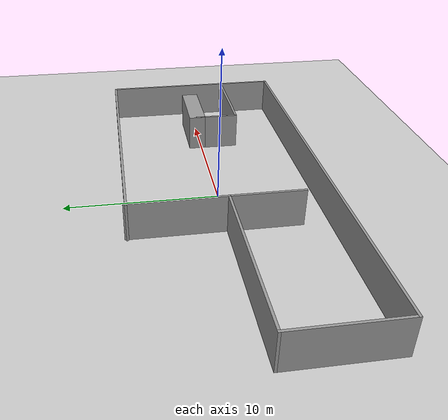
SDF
<sdf version="1.7">
 <world name="default">
  <light name="sun" type="directional">
   <pose>0 0 10 0 -0 0</pose>
   <diffuse>0.8 0.8 0.8 1</diffuse>
   <specular>0.2 0.2 0.2 1</specular>
   <attenuation>
    <range>1000</range>
    <constant>0.9</constant>
    <linear>0.01</linear>
    <quadratic>0.001</quadratic>
   </attenuation>
   <direction>-0.5 0.1 -0.9</direction>
   <spot><inner_angle>0</inner_angle><outer_angle>0</outer_angle><falloff>0</falloff></spot>
  </light>
  <model name="ground_plane">
   <static>1</static>
   <link name="link">
    <collision name="collision">
     <geometry><plane><normal>0 0 1</normal><size>100 100</size></plane></geometry>
     <surface>
      <contact><collide_bitmask>65535</collide_bitmask></contact>
      <friction><ode><mu>100</mu><mu2>50</mu2></ode></friction>
     </surface>
    </collision>
    <visual name="visual">
     <cast_shadows>0</cast_shadows>
     <geometry><plane><normal>0 0 1</normal><size>100 100</size></plane></geometry>
     <material>
      <script><uri>file://media/materials/scripts/gazebo.material</uri><name>Gazebo/Grey</name></script>
     </material>
    </visual>
   </link>
  </model>
  <gravity>0 0 -9.8</gravity>
  <magnetic_field>6e-06 2.3e-05 -4.2e-05</magnetic_field>
  <atmosphere type="adiabatic"/>
  <physics type="ode">
   <max_step_size>0.001</max_step_size>
   <real_time_factor>1</real_time_factor>
   <real_time_update_rate>1000</real_time_update_rate>
  </physics>
  <scene><ambient>0.4 0.4 0.4 1</ambient><background>0.7 0.7 0.7 1</background><shadows>1</shadows></scene>
  <spherical_coordinates>
   <surface_model>EARTH_WGS84</surface_model>
   <latitude_deg>0</latitude_deg>
   <longitude_deg>0</longitude_deg>
   <elevation>0</elevation>
   <heading_deg>0</heading_deg>
  </spherical_coordinates>
  <model name="apb2">
   <model name="apb">
    <pose>-0 -0 0 0 -0 3.14159</pose>
    <link name="Wall_0">
     <collision name="Wall_0_Collision">
      <geometry><box><size>17 0.15 2.5</size></box></geometry>
      <pose>0 0 1.25 0 -0 0</pose>
     </collision>
     <visual name="Wall_0_Visual">
      <pose>0 0 1.25 0 -0 0</pose>
      <geometry><box><size>17 0.15 2.5</size></box></geometry>
      <material>
       <script><uri>file://media/materials/scripts/gazebo.material</uri><name>Gazebo/Grey</name></script>
       <ambient>1 1 1 1</ambient>
      </material>
      <meta><layer>0</layer></meta>
     </visual>
     <pose>-5.25 -6.125 0 0 -0 0</pose>
    </link>
    <link name="Wall_11">
     <collision name="Wall_11_Collision">
      <geometry><box><size>6.25 0.15 2.5</size></box></geometry>
      <pose>0 0 1.25 0 -0 0</pose>
     </collision>
     <visual name="Wall_11_Visual">
      <pose>0 0 1.25 0 -0 0</pose>
      <geometry><box><size>6.25 0.15 2.5</size></box></geometry>
      <material>
       <script><uri>file://media/materials/scripts/gazebo.material</uri><name>Gazebo/Grey</name></script>
       <ambient>1 1 1 1</ambient>
      </material>
      <meta><layer>0</layer></meta>
     </visual>
     <pose>-10.6071 2.46643 0 0 -0 0</pose>
    </link>
    <link name="Wall_12">
     <collision name="Wall_12_Collision">
      <geometry><box><size>3 0.15 2.5</size></box></geometry>
      <pose>0 0 1.25 0 -0 0</pose>
     </collision>
     <visual name="Wall_12_Visual">
      <pose>0 0 1.25 0 -0 0</pose>
      <geometry><box><size>3 0.15 2.5</size></box></geometry>
      <material>
       <script><uri>file://media/materials/scripts/gazebo.material</uri><name>Gazebo/Grey</name></script>
       <ambient>1 1 1 1</ambient>
      </material>
      <meta><layer>0</layer></meta>
     </visual>
     <pose>-7.55709 1.04143 0 0 -0 -1.5708</pose>
    </link>
    <link name="Wall_13">
     <collision name="Wall_13_Collision">
      <geometry><box><size>4.25 1.15 2.5</size></box></geometry>
      <pose>0 0 1.25 0 -0 0</pose>
     </collision>
     <visual name="Wall_13_Visual">
      <pose>0 0 1.25 0 -0 0</pose>
      <geometry><box><size>4.25 1.15 2.5</size></box></geometry>
      <material>
       <script><uri>file://media/materials/scripts/gazebo.material</uri><name>Gazebo/Grey</name></script>
       <ambient>1 1 1 1</ambient>
      </material>
      <meta><layer>0</layer></meta>
     </visual>
     <pose>-9.60709 -0.383569 0 0 -0 3.14159</pose>
    </link>
    <link name="Wall_2">
     <collision name="Wall_2_Collision">
      <geometry><box><size>12.5 0.15 2.5</size></box></geometry>
      <pose>0 0 1.25 0 -0 0</pose>
     </collision>
     <visual name="Wall_2_Visual">
      <pose>0 0 1.25 0 -0 0</pose>
      <geometry><box><size>12.5 0.15 2.5</size></box></geometry>
      <material>
       <script><uri>file://media/materials/scripts/gazebo.material</uri><name>Gazebo/Grey</name></script>
       <ambient>1 1 1 1</ambient>
      </material>
      <meta><layer>0</layer></meta>
     </visual>
     <pose>-13.675 0.05 0 0 -0 1.5708</pose>
    </link>
    <link name="Wall_3">
     <collision name="Wall_3_Collision">
      <geometry><box><size>27.5 0.15 2.5</size></box></geometry>
      <pose>0 0 1.25 0 -0 0</pose>
     </collision>
     <visual name="Wall_3_Visual">
      <pose>0 0 1.25 0 -0 0</pose>
      <geometry><box><size>27.5 0.15 2.5</size></box></geometry>
      <material>
       <script><uri>file://media/materials/scripts/gazebo.material</uri><name>Gazebo/Grey</name></script>
       <ambient>1 1 1 1</ambient>
      </material>
      <meta><layer>0</layer></meta>
     </visual>
     <pose>0 6.225 0 0 -0 0</pose>
    </link>
    <link name="Wall_4">
     <collision name="Wall_4_Collision">
      <geometry><box><size>6.5 0.15 2.5</size></box></geometry>
      <pose>0 0 1.25 0 -0 0</pose>
     </collision>
     <visual name="Wall_4_Visual">
      <pose>0 0 1.25 0 -0 0</pose>
      <geometry><box><size>6.5 0.15 2.5</size></box></geometry>
      <material>
       <script><uri>file://media/materials/scripts/gazebo.material</uri><name>Gazebo/Grey</name></script>
       <ambient>1 1 1 1</ambient>
      </material>
      <meta><layer>0</layer></meta>
     </visual>
     <pose>13.675 3.05 0 0 -0 -1.5708</pose>
    </link>
    <link name="Wall_5">
     <collision name="Wall_5_Collision">
      <geometry><box><size>10.75 0.15 2.5</size></box></geometry>
      <pose>0 0 1.25 0 -0 0</pose>
     </collision>
     <visual name="Wall_5_Visual">
      <pose>0 0 1.25 0 -0 0</pose>
      <geometry><box><size>10.75 0.15 2.5</size></box></geometry>
      <material>
       <script><uri>file://media/materials/scripts/gazebo.material</uri><name>Gazebo/Grey</name></script>
       <ambient>1 1 1 1</ambient>
      </material>
      <meta><layer>0</layer></meta>
     </visual>
     <pose>8.375 -0.125 0 0 -0 3.14159</pose>
    </link>
    <link name="Wall_6">
     <collision name="Wall_6_Collision">
      <geometry><box><size>6.25 0.15 2.5</size></box></geometry>
      <pose>0 0 1.25 0 -0 0</pose>
     </collision>
     <visual name="Wall_6_Visual">
      <pose>0 0 1.25 0 -0 0</pose>
      <geometry><box><size>6.25 0.15 2.5</size></box></geometry>
      <material>
       <script><uri>file://media/materials/scripts/gazebo.material</uri><name>Gazebo/Grey</name></script>
       <ambient>1 1 1 1</ambient>
      </material>
      <meta><layer>0</layer></meta>
     </visual>
     <pose>3.075 -3.175 0 0 -0 -1.5708</pose>
    </link>
    <link name="Wall_9">
     <collision name="Wall_9_Collision">
      <geometry><box><size>4.75 0.15 2.5</size></box></geometry>
      <pose>0 0 1.25 0 -0 0</pose>
     </collision>
     <visual name="Wall_9_Visual">
      <pose>0 0 1.25 0 -0 0</pose>
      <geometry><box><size>4.75 0.15 2.5</size></box></geometry>
      <material>
       <script><uri>file://media/materials/scripts/gazebo.material</uri><name>Gazebo/Grey</name></script>
       <ambient>1 1 1 1</ambient>
      </material>
      <meta><layer>0</layer></meta>
     </visual>
     <pose>3.075 2.175 0 0 -0 1.5708</pose>
    </link>
    <static>1</static>
   </model>
   <static>0</static>
   <pose>-0.675058 -0.054991 0 0 -0 0</pose>
  </model>
 </world>
</sdf>
